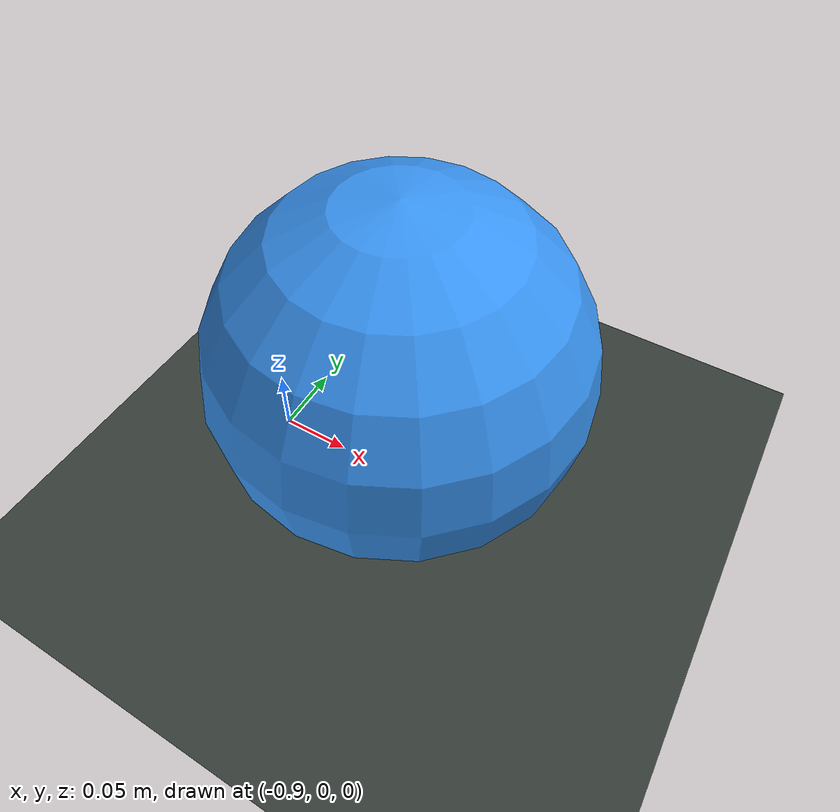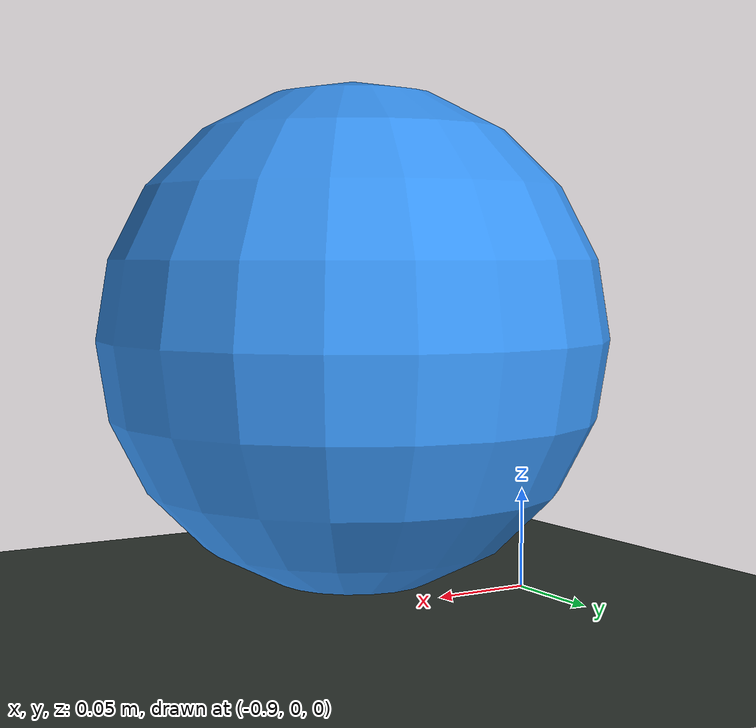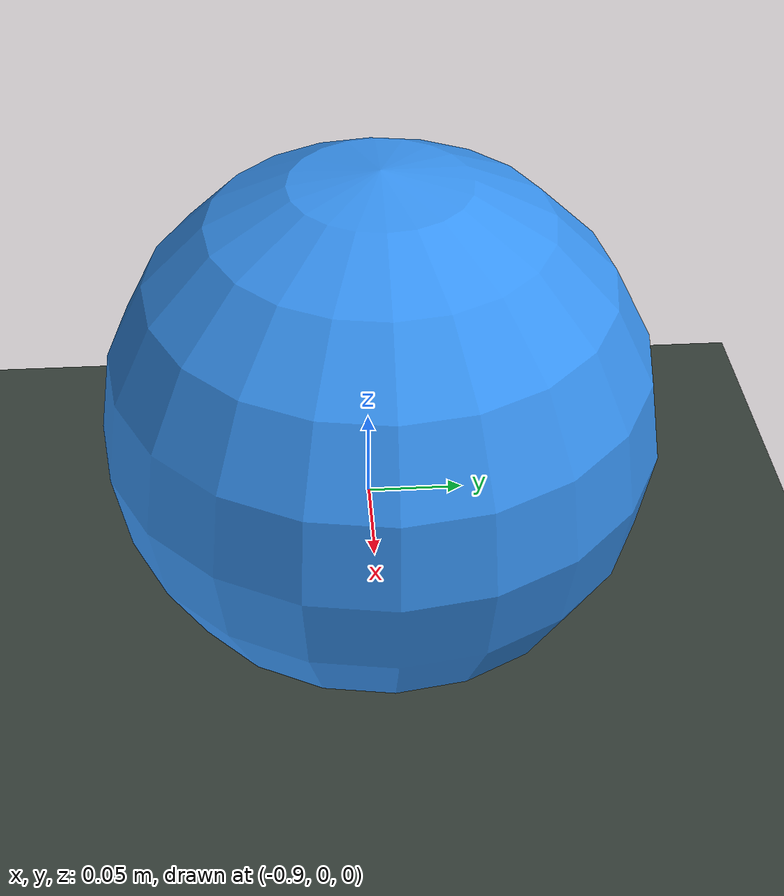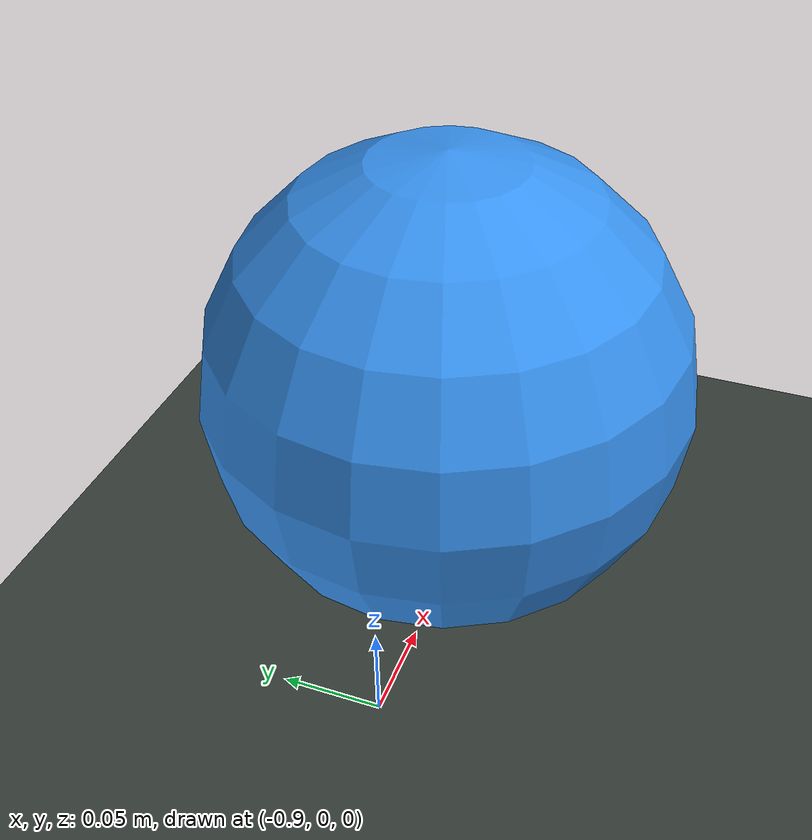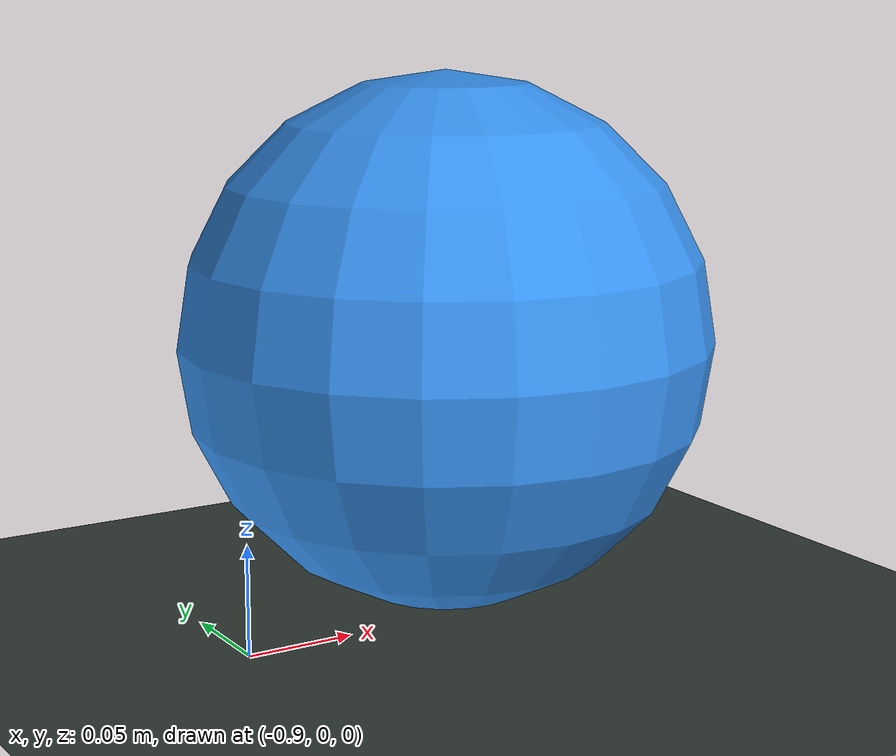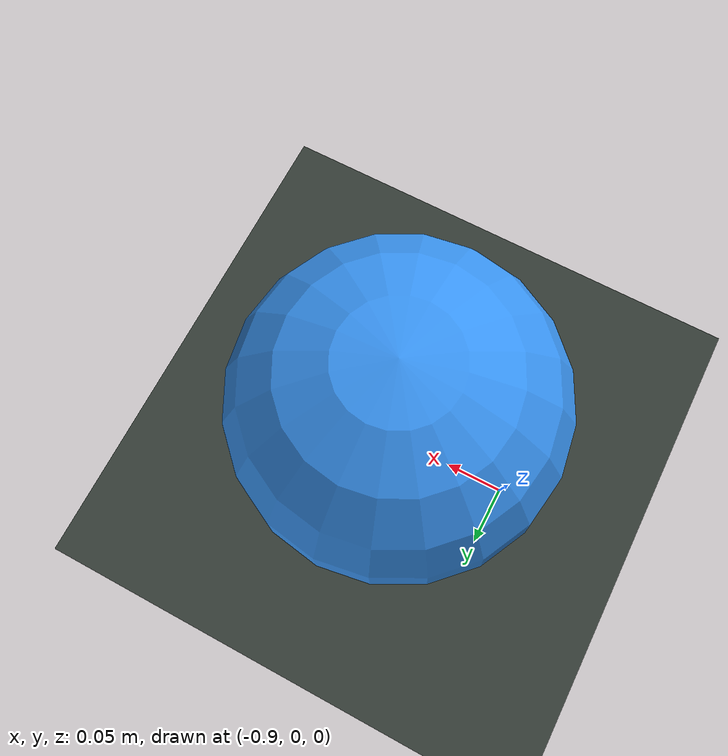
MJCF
<mujoco model="stage1_rolling_ball">
  <compiler angle="degree"/>
  <option timestep="0.002" gravity="0 0 -9.81"/>

  <default>
    <geom friction="1.2 0.005 0.0001"/>
  </default>

  <asset>
    <texture name="grid" type="2d" builtin="checker" rgb1="0.15 0.18 0.16" rgb2="0.27 0.31 0.28" width="300" height="300"/>
    <material name="grid" texture="grid" texrepeat="6 4" reflectance="0.12"/>
  </asset>

  <worldbody>
    <light name="key" pos="0 -3 4" dir="0 1 -1"/>
    <camera name="demo" pos="0 -2.5 0.85" xyaxes="1 0 0 0 0 1"/>
    <geom name="floor" type="plane" size="2.0 1.2 0.02" material="grid"/>

    <body name="ball" pos="-0.8 0 0.13">
      <freejoint name="ball_free"/>
      <geom name="ball_geom" type="sphere" size="0.12" mass="0.5" rgba="0.22 0.58 0.95 1"/>
    </body>
  </worldbody>
</mujoco>
